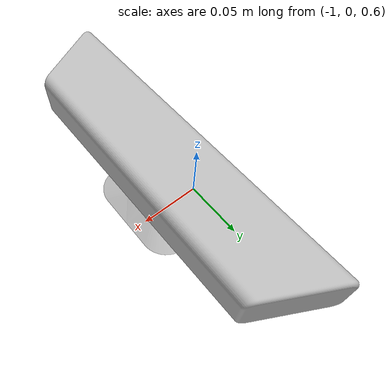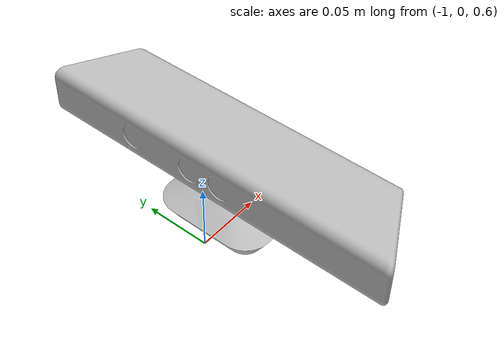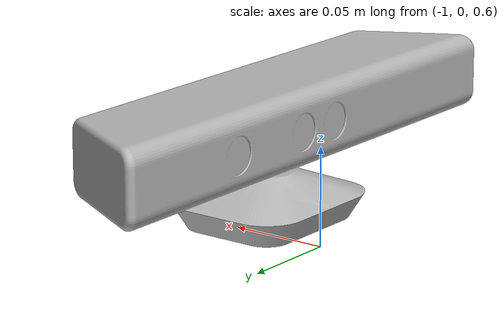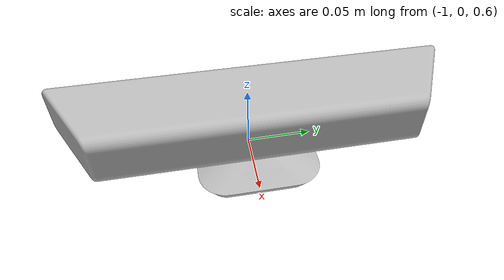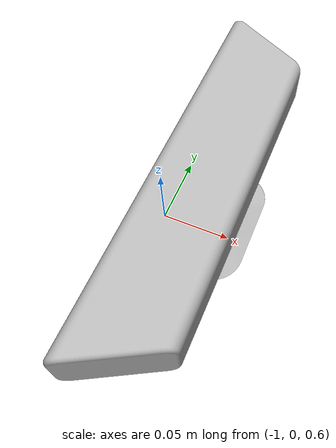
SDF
<?xml version ='1.0'?>
<gazebo version ='1.0'>
<world name='default'>
        <include>
            <uri>model://ground_plane</uri>
        </include>

  <model name='kinect_model'>
  	<static>true</static>
        <link name="kinect">
            <inertial>
                <mass>0.30</mass>
            </inertial>
            <pose>-1.0 0 0.62 0 0 3.14</pose>
            <visual name="visual">
                <pose>0 0 0.04 0 0 0</pose>
                <geometry>
                    <mesh>
                        <uri>model://kinect/meshes/kinect.dae</uri>
                    </mesh>
                </geometry>
            </visual>
            <sensor name="kinect" type="depth">
                <update_rate>5</update_rate>
                <camera>
                    <horizontal_fov>1.047198</horizontal_fov>
                    <image>
                        <width>640</width>
                        <height>480</height>
                        <format>R8G8B8</format>
                    </image>
                    <clip>
                        <near>0.05</near>
                        <far>3</far>
                    </clip>
                </camera>

                <plugin name='depth_camera_plugin' filename='libkinectPlugin.so'>
				</plugin>
            </sensor>
        </link>
  </model>
        <include>
            <uri>model://sun</uri>
        </include>

</world>
</gazebo>
